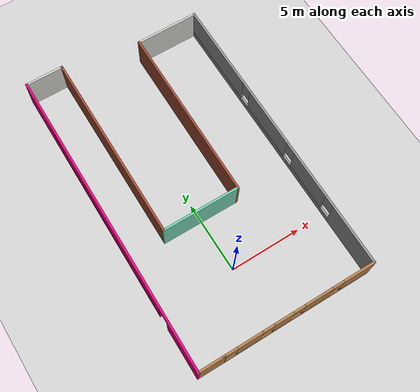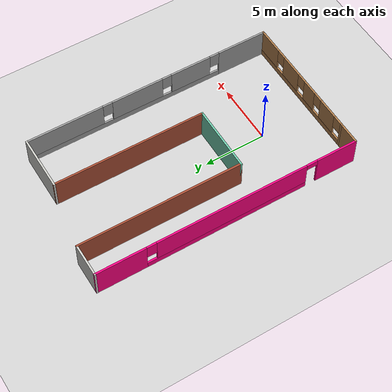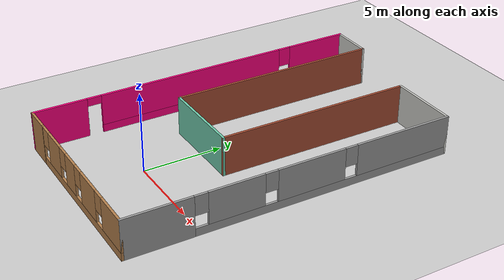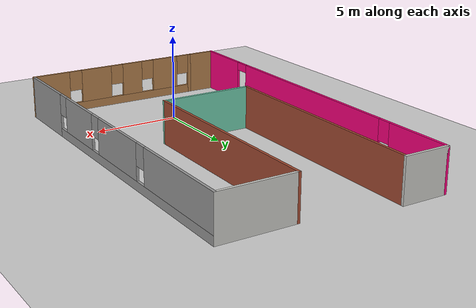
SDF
<sdf version="1.6">
 <world name="default">
  <light name="sun" type="directional">
   <pose>0 0 10 0 -0 0</pose>
   <diffuse>0.8 0.8 0.8 1</diffuse>
   <specular>0.1 0.1 0.1 1</specular>
   <attenuation>
    <range>1000</range>
    <constant>0.9</constant>
    <linear>0.01</linear>
    <quadratic>0.001</quadratic>
   </attenuation>
   <direction>-0.5 0.5 -1</direction>
  </light>
  <model name="ground_plane">
   <static>1</static>
   <link name="link">
    <collision name="collision">
     <geometry><plane><normal>0 0 1</normal><size>100 100</size></plane></geometry>
     <surface><friction><ode><mu>100</mu><mu2>50</mu2></ode></friction></surface>
    </collision>
    <visual name="visual">
     <cast_shadows>0</cast_shadows>
     <geometry><plane><normal>0 0 1</normal><size>100 100</size></plane></geometry>
     <material>
      <script><uri>file://media/materials/scripts/gazebo.material</uri><name>Gazebo/Grey</name></script>
     </material>
    </visual>
   </link>
  </model>
  <gravity>0 0 -9.8</gravity>
  <magnetic_field>6e-06 2.3e-05 -4.2e-05</magnetic_field>
  <atmosphere type="adiabatic"/>
  <physics name="default_physics" default="0" type="ode">
   <max_step_size>0.001</max_step_size>
   <real_time_factor>1</real_time_factor>
   <real_time_update_rate>1000</real_time_update_rate>
  </physics>
  <scene><ambient>0.4 0.4 0.4 1</ambient><background>0.7 0.7 0.7 1</background><shadows>1</shadows></scene>
  <spherical_coordinates>
   <surface_model>EARTH_WGS84</surface_model>
   <latitude_deg>0</latitude_deg>
   <longitude_deg>0</longitude_deg>
   <elevation>0</elevation>
   <heading_deg>0</heading_deg>
  </spherical_coordinates>
  <model name="room">
   <pose>0.881103 6.30439 0 0 -0 1.5629</pose>
   <link name="Wall_1">
    <pose>-10.8 -0.85 0 0 0 -1.5708</pose>
    <visual name="Wall_1_Visual_0">
     <pose>-5.2715 0 1.25 0 -0 0</pose>
     <geometry><box><size>0.207004 0.15 2.5</size></box></geometry>
     <material>
      <script><uri>file://media/materials/scripts/gazebo.material</uri><name>Gazebo/Wood</name></script>
      <ambient>1 1 1 1</ambient>
     </material>
    </visual>
    <collision name="Wall_1_Collision_0">
     <geometry><box><size>0.207004 0.15 2.5</size></box></geometry>
     <pose>-5.2715 0 1.25 0 -0 0</pose>
    </collision>
    <visual name="Wall_1_Visual_1">
     <pose>0.103502 0 0.25 0 -0 0</pose>
     <geometry><box><size>10.543 0.15 0.5</size></box></geometry>
     <material>
      <script><uri>file://media/materials/scripts/gazebo.material</uri><name>Gazebo/Wood</name></script>
      <ambient>1 1 1 1</ambient>
     </material>
    </visual>
    <collision name="Wall_1_Collision_1">
     <geometry><box><size>10.543 0.15 0.5</size></box></geometry>
     <pose>0.103502 0 0.25 0 -0 0</pose>
    </collision>
    <visual name="Wall_1_Visual_2">
     <pose>-3.49581 0 1.5 0 -0 0</pose>
     <geometry><box><size>1.74437 0.15 2</size></box></geometry>
     <material>
      <script><uri>file://media/materials/scripts/gazebo.material</uri><name>Gazebo/Wood</name></script>
      <ambient>1 1 1 1</ambient>
     </material>
    </visual>
    <collision name="Wall_1_Collision_2">
     <geometry><box><size>1.74437 0.15 2</size></box></geometry>
     <pose>-3.49581 0 1.5 0 -0 0</pose>
    </collision>
    <visual name="Wall_1_Visual_3">
     <pose>-1.15962 0 1.5 0 -0 0</pose>
     <geometry><box><size>1.32802 0.15 2</size></box></geometry>
     <material>
      <script><uri>file://media/materials/scripts/gazebo.material</uri><name>Gazebo/Wood</name></script>
      <ambient>1 1 1 1</ambient>
     </material>
    </visual>
    <collision name="Wall_1_Collision_3">
     <geometry><box><size>1.32802 0.15 2</size></box></geometry>
     <pose>-1.15962 0 1.5 0 -0 0</pose>
    </collision>
    <visual name="Wall_1_Visual_4">
     <pose>1.29222 0 1.5 0 -0 0</pose>
     <geometry><box><size>1.97567 0.15 2</size></box></geometry>
     <material>
      <script><uri>file://media/materials/scripts/gazebo.material</uri><name>Gazebo/Wood</name></script>
      <ambient>1 1 1 1</ambient>
     </material>
    </visual>
    <collision name="Wall_1_Collision_4">
     <geometry><box><size>1.97567 0.15 2</size></box></geometry>
     <pose>1.29222 0 1.5 0 -0 0</pose>
    </collision>
    <visual name="Wall_1_Visual_5">
     <pose>4.22753 0 1.5 0 -0 0</pose>
     <geometry><box><size>2.29494 0.15 2</size></box></geometry>
     <material>
      <script><uri>file://media/materials/scripts/gazebo.material</uri><name>Gazebo/Wood</name></script>
      <ambient>1 1 1 1</ambient>
     </material>
    </visual>
    <collision name="Wall_1_Collision_5">
     <geometry><box><size>2.29494 0.15 2</size></box></geometry>
     <pose>4.22753 0 1.5 0 -0 0</pose>
    </collision>
    <visual name="Wall_1_Visual_6">
     <pose>-4.768 0 1.9 0 -0 0</pose>
     <geometry><box><size>0.8 0.15 1.2</size></box></geometry>
     <material>
      <script><uri>file://media/materials/scripts/gazebo.material</uri><name>Gazebo/Wood</name></script>
      <ambient>1 1 1 1</ambient>
     </material>
    </visual>
    <collision name="Wall_1_Collision_6">
     <geometry><box><size>0.8 0.15 1.2</size></box></geometry>
     <pose>-4.768 0 1.9 0 -0 0</pose>
    </collision>
    <visual name="Wall_1_Visual_7">
     <pose>-2.22363 0 1.9 0 -0 0</pose>
     <geometry><box><size>0.8 0.15 1.2</size></box></geometry>
     <material>
      <script><uri>file://media/materials/scripts/gazebo.material</uri><name>Gazebo/Wood</name></script>
      <ambient>1 1 1 1</ambient>
     </material>
    </visual>
    <collision name="Wall_1_Collision_7">
     <geometry><box><size>0.8 0.15 1.2</size></box></geometry>
     <pose>-2.22363 0 1.9 0 -0 0</pose>
    </collision>
    <visual name="Wall_1_Visual_8">
     <pose>-0.095613 0 1.9 0 -0 0</pose>
     <geometry><box><size>0.8 0.15 1.2</size></box></geometry>
     <material>
      <script><uri>file://media/materials/scripts/gazebo.material</uri><name>Gazebo/Wood</name></script>
      <ambient>1 1 1 1</ambient>
     </material>
    </visual>
    <collision name="Wall_1_Collision_8">
     <geometry><box><size>0.8 0.15 1.2</size></box></geometry>
     <pose>-0.095613 0 1.9 0 -0 0</pose>
    </collision>
    <visual name="Wall_1_Visual_9">
     <pose>2.68006 0 1.9 0 -0 0</pose>
     <geometry><box><size>0.8 0.15 1.2</size></box></geometry>
     <material>
      <script><uri>file://media/materials/scripts/gazebo.material</uri><name>Gazebo/Wood</name></script>
      <ambient>1 1 1 1</ambient>
     </material>
    </visual>
    <collision name="Wall_1_Collision_9">
     <geometry><box><size>0.8 0.15 1.2</size></box></geometry>
     <pose>2.68006 0 1.9 0 -0 0</pose>
    </collision>
   </link>
   <link name="Wall_2">
    <pose>-0.5 -6.15 0 0 -0 0</pose>
    <visual name="Wall_2_Visual_0">
     <pose>-8.2707 0 1.25 0 -0 0</pose>
     <geometry><box><size>4.2086 0.15 2.5</size></box></geometry>
     <material>
      <script><uri>file://media/materials/scripts/gazebo.material</uri><name>Gazebo/Grey</name></script>
      <ambient>1 1 1 1</ambient>
     </material>
    </visual>
    <collision name="Wall_2_Collision_0">
     <geometry><box><size>4.2086 0.15 2.5</size></box></geometry>
     <pose>-8.2707 0 1.25 0 -0 0</pose>
    </collision>
    <visual name="Wall_2_Visual_1">
     <pose>2.1043 0 0.25 0 -0 0</pose>
     <geometry><box><size>16.5414 0.15 0.5</size></box></geometry>
     <material>
      <script><uri>file://media/materials/scripts/gazebo.material</uri><name>Gazebo/Grey</name></script>
      <ambient>1 1 1 1</ambient>
     </material>
    </visual>
    <collision name="Wall_2_Collision_1">
     <geometry><box><size>16.5414 0.15 0.5</size></box></geometry>
     <pose>2.1043 0 0.25 0 -0 0</pose>
    </collision>
    <visual name="Wall_2_Visual_2">
     <pose>-3.64995 0 1.5 0 -0 0</pose>
     <geometry><box><size>3.4329 0.15 2</size></box></geometry>
     <material>
      <script><uri>file://media/materials/scripts/gazebo.material</uri><name>Gazebo/Grey</name></script>
      <ambient>1 1 1 1</ambient>
     </material>
    </visual>
    <collision name="Wall_2_Collision_2">
     <geometry><box><size>3.4329 0.15 2</size></box></geometry>
     <pose>-3.64995 0 1.5 0 -0 0</pose>
    </collision>
    <visual name="Wall_2_Visual_3">
     <pose>1.034 0 1.5 0 -0 0</pose>
     <geometry><box><size>4.335 0.15 2</size></box></geometry>
     <material>
      <script><uri>file://media/materials/scripts/gazebo.material</uri><name>Gazebo/Grey</name></script>
      <ambient>1 1 1 1</ambient>
     </material>
    </visual>
    <collision name="Wall_2_Collision_3">
     <geometry><box><size>4.335 0.15 2</size></box></geometry>
     <pose>1.034 0 1.5 0 -0 0</pose>
    </collision>
    <visual name="Wall_2_Visual_4">
     <pose>7.18825 0 1.5 0 -0 0</pose>
     <geometry><box><size>6.3735 0.15 2</size></box></geometry>
     <material>
      <script><uri>file://media/materials/scripts/gazebo.material</uri><name>Gazebo/Grey</name></script>
      <ambient>1 1 1 1</ambient>
     </material>
    </visual>
    <collision name="Wall_2_Collision_4">
     <geometry><box><size>6.3735 0.15 2</size></box></geometry>
     <pose>7.18825 0 1.5 0 -0 0</pose>
    </collision>
    <visual name="Wall_2_Visual_5">
     <pose>-5.7664 0 1.9 0 -0 0</pose>
     <geometry><box><size>0.8 0.15 1.2</size></box></geometry>
     <material>
      <script><uri>file://media/materials/scripts/gazebo.material</uri><name>Gazebo/Grey</name></script>
      <ambient>1 1 1 1</ambient>
     </material>
    </visual>
    <collision name="Wall_2_Collision_5">
     <geometry><box><size>0.8 0.15 1.2</size></box></geometry>
     <pose>-5.7664 0 1.9 0 -0 0</pose>
    </collision>
    <visual name="Wall_2_Visual_6">
     <pose>-1.5335 0 1.9 0 -0 0</pose>
     <geometry><box><size>0.8 0.15 1.2</size></box></geometry>
     <material>
      <script><uri>file://media/materials/scripts/gazebo.material</uri><name>Gazebo/Grey</name></script>
      <ambient>1 1 1 1</ambient>
     </material>
    </visual>
    <collision name="Wall_2_Collision_6">
     <geometry><box><size>0.8 0.15 1.2</size></box></geometry>
     <pose>-1.5335 0 1.9 0 -0 0</pose>
    </collision>
    <visual name="Wall_2_Visual_7">
     <pose>3.60149 0 1.9 0 -0 0</pose>
     <geometry><box><size>0.8 0.15 1.2</size></box></geometry>
     <material>
      <script><uri>file://media/materials/scripts/gazebo.material</uri><name>Gazebo/Grey</name></script>
      <ambient>1 1 1 1</ambient>
     </material>
    </visual>
    <collision name="Wall_2_Collision_7">
     <geometry><box><size>0.8 0.15 1.2</size></box></geometry>
     <pose>3.60149 0 1.9 0 -0 0</pose>
    </collision>
   </link>
   <link name="Wall_3">
    <collision name="Wall_3_Collision">
     <geometry><box><size>4.5 0.15 2.5</size></box></geometry>
     <pose>0 0 1.25 0 -0 0</pose>
    </collision>
    <visual name="Wall_3_Visual">
     <pose>0 0 1.25 0 -0 0</pose>
     <geometry><box><size>4.5 0.15 2.5</size></box></geometry>
     <material>
      <script><uri>file://media/materials/scripts/gazebo.material</uri><name>Gazebo/CeilingTiled</name></script>
      <ambient>1 1 1 1</ambient>
     </material>
    </visual>
    <pose>9.8 -3.975 0 0 -0 1.5708</pose>
   </link>
   <link name="Wall_4">
    <collision name="Wall_4_Collision">
     <geometry><box><size>12.5 0.15 2.5</size></box></geometry>
     <pose>0 0 1.25 0 -0 0</pose>
    </collision>
    <visual name="Wall_4_Visual">
     <pose>0 0 1.25 0 -0 0</pose>
     <geometry><box><size>12.5 0.15 2.5</size></box></geometry>
     <material>
      <script><uri>file://media/materials/scripts/gazebo.material</uri><name>Gazebo/Bricks</name></script>
      <ambient>1 1 1 1</ambient>
     </material>
    </visual>
    <pose>3.625 -1.8 0 0 -0 3.14159</pose>
   </link>
   <link name="Wall_5">
    <collision name="Wall_5_Collision">
     <geometry><box><size>5.5 0.15 2.5</size></box></geometry>
     <pose>0 0 1.25 0 -0 0</pose>
    </collision>
    <visual name="Wall_5_Visual">
     <pose>0 0 1.25 0 -0 0</pose>
     <geometry><box><size>5.5 0.15 2.5</size></box></geometry>
     <material>
      <script><uri>file://media/materials/scripts/gazebo.material</uri><name>Gazebo/Grey</name></script>
      <ambient>0.435294 0.796078 0.67451 1</ambient>
     </material>
    </visual>
    <pose>-2.55 0.875 0 0 -0 1.5708</pose>
   </link>
   <link name="Wall_6">
    <collision name="Wall_6_Collision">
     <geometry><box><size>13.5 0.15 2.5</size></box></geometry>
     <pose>0 0 1.25 0 -0 0</pose>
    </collision>
    <visual name="Wall_6_Visual">
     <pose>0 0 1.25 0 -0 0</pose>
     <geometry><box><size>13.5 0.15 2.5</size></box></geometry>
     <material>
      <script><uri>file://media/materials/scripts/gazebo.material</uri><name>Gazebo/Bricks</name></script>
      <ambient>1 1 1 1</ambient>
     </material>
    </visual>
    <pose>4.125 3.55 0 0 -0 0</pose>
   </link>
   <link name="Wall_7">
    <collision name="Wall_7_Collision">
     <geometry><box><size>2.75 0.15 2.5</size></box></geometry>
     <pose>0 0 1.25 0 -0 0</pose>
    </collision>
    <visual name="Wall_7_Visual">
     <pose>0 0 1.25 0 -0 0</pose>
     <geometry><box><size>2.75 0.15 2.5</size></box></geometry>
     <material>
      <script><uri>file://media/materials/scripts/gazebo.material</uri><name>Gazebo/CeilingTiled</name></script>
      <ambient>1 1 1 1</ambient>
     </material>
    </visual>
    <pose>10.8 4.85 0 0 -0 1.5708</pose>
   </link>
   <link name="Wall_8">
    <pose>0 6.15 0 0 -0 3.14159</pose>
    <visual name="Wall_8_Visual_0">
     <pose>-8.83052 0 1.25 0 -0 0</pose>
     <geometry><box><size>4.08896 0.15 2.5</size></box></geometry>
     <material>
      <script><uri>file://media/materials/scripts/gazebo.material</uri><name>Gazebo/Grey</name></script>
      <ambient>1 0 0.498039 1</ambient>
     </material>
    </visual>
    <collision name="Wall_8_Collision_0">
     <geometry><box><size>4.08896 0.15 2.5</size></box></geometry>
     <pose>-8.83052 0 1.25 0 -0 0</pose>
    </collision>
    <visual name="Wall_8_Visual_1">
     <pose>9.14266 0 1.25 0 -0 0</pose>
     <geometry><box><size>3.46468 0.15 2.5</size></box></geometry>
     <material>
      <script><uri>file://media/materials/scripts/gazebo.material</uri><name>Gazebo/Grey</name></script>
      <ambient>1 0 0.498039 1</ambient>
     </material>
    </visual>
    <collision name="Wall_8_Collision_1">
     <geometry><box><size>3.46468 0.15 2.5</size></box></geometry>
     <pose>9.14266 0 1.25 0 -0 0</pose>
    </collision>
    <visual name="Wall_8_Visual_2">
     <pose>-0.137861 0 0.25 0 -0 0</pose>
     <geometry><box><size>13.2964 0.15 0.5</size></box></geometry>
     <material>
      <script><uri>file://media/materials/scripts/gazebo.material</uri><name>Gazebo/Grey</name></script>
      <ambient>1 0 0.498039 1</ambient>
     </material>
    </visual>
    <collision name="Wall_8_Collision_2">
     <geometry><box><size>13.2964 0.15 0.5</size></box></geometry>
     <pose>-0.137861 0 0.25 0 -0 0</pose>
    </collision>
    <visual name="Wall_8_Visual_3">
     <pose>0.262139 0 1.5 0 -0 0</pose>
     <geometry><box><size>12.4964 0.15 2</size></box></geometry>
     <material>
      <script><uri>file://media/materials/scripts/gazebo.material</uri><name>Gazebo/Grey</name></script>
      <ambient>1 0 0.498039 1</ambient>
     </material>
    </visual>
    <collision name="Wall_8_Collision_3">
     <geometry><box><size>12.4964 0.15 2</size></box></geometry>
     <pose>0.262139 0 1.5 0 -0 0</pose>
    </collision>
    <visual name="Wall_8_Visual_4">
     <pose>-6.38604 0 1.9 0 -0 0</pose>
     <geometry><box><size>0.8 0.15 1.2</size></box></geometry>
     <material>
      <script><uri>file://media/materials/scripts/gazebo.material</uri><name>Gazebo/Grey</name></script>
      <ambient>1 0 0.498039 1</ambient>
     </material>
    </visual>
    <collision name="Wall_8_Collision_4">
     <geometry><box><size>0.8 0.15 1.2</size></box></geometry>
     <pose>-6.38604 0 1.9 0 -0 0</pose>
    </collision>
    <visual name="Wall_8_Visual_5">
     <pose>6.96032 0 2.25 0 -0 0</pose>
     <geometry><box><size>0.9 0.15 0.5</size></box></geometry>
     <material>
      <script><uri>file://media/materials/scripts/gazebo.material</uri><name>Gazebo/Grey</name></script>
      <ambient>1 0 0.498039 1</ambient>
     </material>
    </visual>
    <collision name="Wall_8_Collision_5">
     <geometry><box><size>0.9 0.15 0.5</size></box></geometry>
     <pose>6.96032 0 2.25 0 -0 0</pose>
    </collision>
   </link>
   <link name="Wall_9">
    <collision name="Wall_9_Collision">
     <geometry><box><size>1.85 0.15 2.5</size></box></geometry>
     <pose>0 0 1.25 0 -0 0</pose>
    </collision>
    <visual name="Wall_9_Visual">
     <pose>0 0 1.25 0 -0 0</pose>
     <geometry><box><size>1.85 0.15 2.5</size></box></geometry>
     <material>
      <script><uri>file://media/materials/scripts/gazebo.material</uri><name>Gazebo/Wood</name></script>
      <ambient>1 1 1 1</ambient>
     </material>
    </visual>
    <pose>-10.8 5.3 0 0 0 -1.5708</pose>
   </link>
   <static>1</static>
  </model>
  <plugin filename="libcollision_map_creator.so" name="collision_map_creator"/>
 </world>
</sdf>
